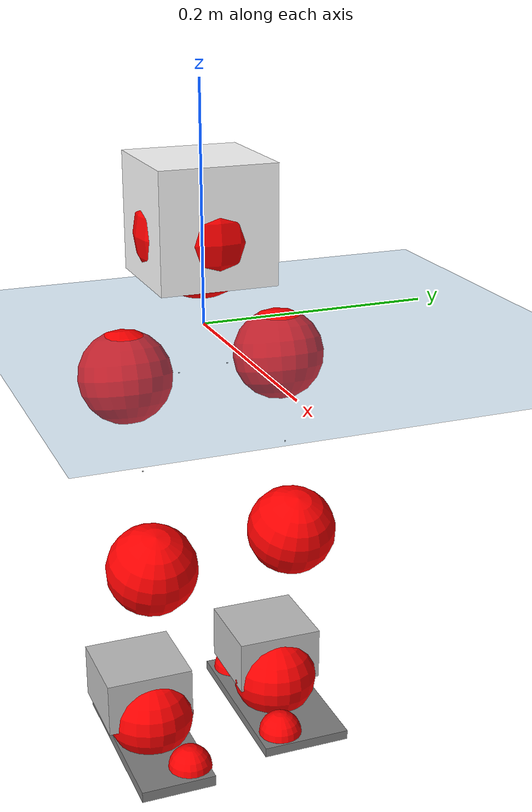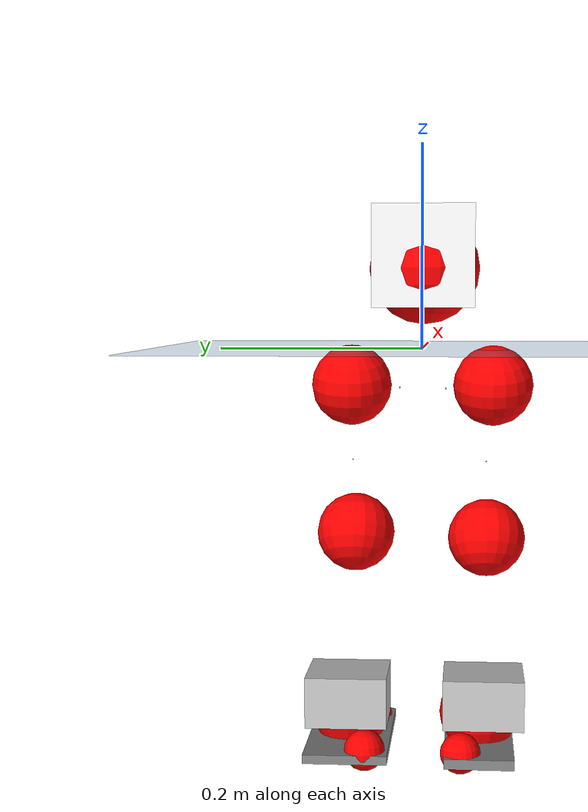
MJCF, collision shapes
<mujoco model="pi_12dof_release_v1">
  <compiler angle="radian" assetdir="assets" balanceinertia="true" inertiafromgeom="false"/>

  <option timestep="0.005" density="1.2" viscosity="2e-05"/>

  <size nkey="1"/>

  <visual>
    <quality shadowsize="8192"/>
    <map shadowclip="0.5"/>
  </visual>

  <default>
    <default class="/">
      <joint armature="0.01" damping="0.01" frictionloss="0.01"/>
      <geom contype="0" conaffinity="0" group="1" solref="-1000 -80"/>
      <site size="0.01 0.005 0.005" group="5"/>
      <general forcelimited="true" biastype="affine" gainprm="20" biasprm="0 -20 -0.5"/>
      <default class="foot">
        <geom size="0.0845 0.036 0.005" type="box" condim="6" group="4" priority="1" friction="0.9 0.2 0.2" solimp="0.015 1 0.005"/>
      </default>
      <default class="reward_collision_sphere">
        <geom group="5" rgba="1 0 0 1"/>
      </default>
    </default>
  </default>

  <asset>
    <texture type="skybox" colorspace="auto" name="//unnamed_texture_0" builtin="gradient" rgb1="0.95 0.95 0.95" rgb2="0.95 0.95 0.95" width="100" height="600"/>
    <texture type="2d" colorspace="auto" name="texplane" builtin="checker" rgb1="0.345 0.575 0.748" rgb2="0.345 0.575 0.748" markrgb="1 1 1" width="512" height="512"/>
    <material name="MatPlane" class="/" texture="texplane" texuniform="true" texrepeat="2 2" specular="0.9"/>
    <mesh name="baselink_1" class="/" file="baselink_1.STL"/>
    <mesh name="r_hip_pitch_link" class="/" file="r_hip_pitch_link.STL"/>
    <mesh name="r_hip_roll_link" class="/" file="r_hip_roll_link.STL"/>
    <mesh name="r_thigh_link" class="/" file="r_thigh_link.STL"/>
    <mesh name="r_calf_link" class="/" file="r_calf_link.STL"/>
    <mesh name="r_ankle_pitch_link" class="/" file="r_ankle_pitch_link.STL"/>
    <mesh name="r_ankle_roll_link" class="/" file="r_ankle_roll_link.STL"/>
    <mesh name="l_hip_pitch_link" class="/" file="l_hip_pitch_link.STL"/>
    <mesh name="l_hip_roll_link" class="/" file="l_hip_roll_link.STL"/>
    <mesh name="l_thigh_link" class="/" file="l_thigh_link.STL"/>
    <mesh name="l_calf_link" class="/" file="l_calf_link.STL"/>
    <mesh name="l_ankle_pitch_link" class="/" file="l_ankle_pitch_link.STL"/>
    <mesh name="l_ankle_roll_link" class="/" file="l_ankle_roll_link.STL"/>
  </asset>

  <worldbody>
    <geom name="floor" class="/" size="100 100 0.125" type="plane" group="0" material="MatPlane"/>
    <light name="toplight_shadow" class="/" pos="0 0 5" dir="0.0990148 0.0990148 -0.990148" type="directional" ambient="0.04 0.04 0.04" diffuse="0.55 0.55 0.55" specular="0.12 0.12 0.12"/>
    <light name="toplight_fill" class="/" pos="0 0 5" dir="0.0990148 0.0990148 -0.990148" type="directional" castshadow="false" ambient="0.04 0.04 0.04" diffuse="0.3 0.3 0.3" specular="0.08 0.08 0.08"/>
    <body name="trunk" pos="0.000507758 -0.00257246 -0.0020503" quat="0.999999 -0.0010556 0.000537511 0.000479183">
      <inertial pos="-0.000462934 -0.000389025 0.0490088" quat="0.702517 0.0190385 0.0116484 0.711317" mass="2.10661" diaginertia="0.00596449 0.00516649 0.00856895"/>
      <joint name="//unnamed_joint_0" type="free"/>
      <geom name="//unnamed_geom_1" class="/" type="mesh" density="0" rgba="1 1 1 1" mesh="baselink_1"/>
      <geom name="//unnamed_geom_2" class="/" size="0.0492255 0.0492255 0.0492255" pos="0 0 0.0920996" type="box" rgba="1 1 1 1"/>
      <geom name="//unnamed_geom_3" class="reward_collision_sphere" size="0.054148" pos="0 0 0.0805871"/>
      <site name="imu" class="/" pos="0.00278846 -0.00492716 -0.00492081" size="0.0098451"/>
      <camera name="track" class="/" pos="0 -1.79163 0" quat="0.707107 0.707107 0 0" mode="trackcom"/>
      <camera name="ego_camera" class="/" pos="0.0679852 0 0.207224" quat="-0.5 -0.5 0.5 0.5"/>
      <body name="r_hip_pitch_link" pos="0.0022678 -0.0211866 -0.0371671" quat="0.9922 -2.31057e-05 -0.124655 1.73469e-05">
        <inertial pos="0.00116456 -0.0517578 -0.00154472" quat="-0.0178438 0.708992 -0.0292112 0.704385" mass="0.353685" diaginertia="6.80358e-05 5.5287e-05 0.000172191"/>
        <joint name="r_hip_pitch_joint" class="/" pos="0 0 0" axis="0.000314965 -0.999999 -0.00150204" stiffness="0.00843842" range="-1.69369 1.30366" armature="0.0102604" damping="0.0132755" frictionloss="0.010149"/>
        <geom name="//unnamed_geom_4" class="/" type="mesh" density="0" rgba="0.75294 0.75294 0.75294 1" mesh="r_hip_pitch_link"/>
        <geom name="//unnamed_geom_5" class="/" size="0.000492255 0.000492255 0.000492255" type="box" rgba="0.75294 0.75294 0.75294 1"/>
        <body name="r_hip_roll_link" pos="0.00195772 -0.0466959 0.00246942" quat="1 0.000122432 5.99624e-05 -0.00010484">
          <inertial pos="-0.00083959 -0.0018953 -0.0728658" quat="0.705957 -0.0873785 -0.0726561 0.699078" mass="0.383296" diaginertia="0.000201193 0.000160483 0.000260205"/>
          <joint name="r_hip_roll_joint" class="/" pos="0 0 0" axis="-0.999906 0.0134934 -0.00222319" range="-0.112253 0.51727" armature="0.0109071" damping="0.0181303" frictionloss="0.010138"/>
          <geom name="//unnamed_geom_6" class="/" type="mesh" density="0" rgba="0.75294 0.75294 0.75294 1" mesh="r_hip_roll_link"/>
          <geom name="//unnamed_geom_7" class="/" size="0.000492255 0.000492255 0.000492255" type="box" rgba="0.75294 0.75294 0.75294 1"/>
          <geom name="//unnamed_geom_8" class="reward_collision_sphere" size="0.0393804"/>
          <body name="r_thigh_link" pos="0.000252741 0.00631153 -0.0803222" quat="1 2.02854e-05 0.000250756 -9.47009e-05">
            <inertial pos="-0.000605245 -0.00130019 -0.0566689" quat="0.740623 0.671835 0.00747296 0.00775962" mass="0.106901" diaginertia="7.39136e-05 5.32461e-05 0.000113995"/>
            <joint name="r_thigh_joint" class="/" pos="0 0 0" axis="0.000580753 -0.00518152 -0.999986" range="-0.304425 0.590061" armature="0.0107372" damping="0.00914433" frictionloss="0.00999319"/>
            <geom name="//unnamed_geom_9" class="/" type="mesh" density="0" rgba="0.75294 0.75294 0.75294 1" mesh="r_thigh_link"/>
            <geom name="//unnamed_geom_10" class="/" size="0.000492255 0.000492255 0.000492255" type="box" rgba="0.75294 0.75294 0.75294 1"/>
            <body name="r_calf_link" pos="0.000731229 -0.00102989 -0.0836731" quat="0.947726 0.000233465 0.319086 0.000453087">
              <inertial pos="-0.00124833 0.0020004 -0.0827117" quat="0.999981 -0.000572212 0.00430853 0.00430659" mass="0.746072" diaginertia="0.00207263 0.00202014 0.000360217"/>
              <joint name="r_calf_joint" class="/" pos="0 0 0" axis="1.98454e-05 -1 0.000568002" range="-1.70702 0.638612" armature="0.00974348" damping="0" frictionloss="0.010273"/>
              <geom name="//unnamed_geom_11" class="/" type="mesh" density="0" rgba="0.75294 0.75294 0.75294 1" mesh="r_calf_link"/>
              <geom name="//unnamed_geom_12" class="/" size="0.000492255 0.000492255 0.000492255" type="box" rgba="0.75294 0.75294 0.75294 1"/>
              <geom name="//unnamed_geom_13" class="reward_collision_sphere" size="0.0393804"/>
              <body name="r_ankle_pitch_link" pos="-0.00253073 0.00285966 -0.162044" quat="0.980066 -0.000113418 -0.19867 -0.000198407">
                <inertial pos="0.00692083 0.000598765 0.000411915" quat="0.00352398 0.703523 -0.0128504 0.710548" mass="0.170963" diaginertia="0.000181315 0.000127541 0.000241481"/>
                <joint name="r_ankle_pitch_joint" class="/" pos="0 0 0" axis="-0.00498973 -0.999981 0.00356398" range="-1.3484 0.487289" armature="0.0105402" damping="0.00745737" frictionloss="0.0104086"/>
                <geom name="//unnamed_geom_14" class="/" type="mesh" density="0" rgba="0.75294 0.75294 0.75294 1" mesh="r_ankle_pitch_link"/>
                <geom name="//unnamed_geom_15" class="/" size="0.0383959 0.0393804 0.0246127" type="box" rgba="0.75294 0.75294 0.75294 1"/>
                <body name="r_ankle_roll_link" pos="0.0669231 0.00411704 0.000891188" quat="1 0.000370067 -0.000157094 -8.48044e-05">
                  <inertial pos="-0.0244848 0.00282611 -0.017465" quat="0.565906 0.436427 0.433772 0.548748" mass="0.493566" diaginertia="0.000668905 0.000611321 0.00055171"/>
                  <joint name="r_ankle_roll_joint" class="/" pos="0 0 0" axis="-0.999985 -0.00445945 0.00318035" stiffness="0.00384937" range="-0.157827 0.190472" armature="0.0102581" damping="0.0211354" frictionloss="0.0108737"/>
                  <geom name="//unnamed_geom_16" class="/" type="mesh" density="0" rgba="0.75294 0.75294 0.75294 1" mesh="r_ankle_roll_link"/>
                  <geom name="//unnamed_geom_17" class="/" type="mesh" rgba="0.75294 0.75294 0.75294 1" mesh="r_ankle_roll_link"/>
                  <geom name="right_foot" class="foot" size="0.082925 0.0337501 0.00493925" pos="-0.0462299 0 -0.0506548"/>
                  <geom name="//unnamed_geom_19" class="reward_collision_sphere" size="0.0393804" pos="-0.0453234 0 -0.0230249"/>
                  <geom name="//unnamed_geom_20" class="reward_collision_sphere" size="0.0196902" pos="0.013597 0.0179163 -0.0460498"/>
                  <geom name="//unnamed_geom_21" class="reward_collision_sphere" size="0.0196902" pos="-0.108776 0.0179163 -0.0460498"/>
                  <site name="right_foot" class="foot" pos="-0.0462299 0 -0.0506548" size="0.0098451"/>
                </body>
              </body>
            </body>
          </body>
        </body>
      </body>
      <body name="l_hip_pitch_link" pos="-0.00333312 0.0239863 -0.0358205" quat="0.992219 -0.000549686 -0.124501 0.000407076">
        <inertial pos="0.00170325 0.0467112 0.00272918" quat="-0.0390635 0.710123 0.0291534 0.702389" mass="0.362111" diaginertia="7.52824e-05 5.66564e-05 0.000204116"/>
        <joint name="l_hip_pitch_joint" class="/" pos="0 0 0" axis="-0.004521 0.999969 -0.00644473" stiffness="0.00226561" range="-1.25502 1.78141" armature="0.0103178" damping="0.00626128" frictionloss="0.00988936"/>
        <geom name="//unnamed_geom_22" class="/" type="mesh" density="0" rgba="0.75294 0.75294 0.75294 1" mesh="l_hip_pitch_link"/>
        <geom name="//unnamed_geom_23" class="/" size="0.000492255 0.000492255 0.000492255" type="box" rgba="0.75294 0.75294 0.75294 1"/>
        <body name="l_hip_roll_link" pos="-0.000640212 0.0474526 0.0029611" quat="1 0.00010356 -2.29352e-05 0.000240883">
          <inertial pos="-0.000368684 -0.00064467 -0.0684768" quat="0.705291 -0.0697962 -0.0731894 0.701667" mass="0.370917" diaginertia="0.000197063 0.000165983 0.00026411"/>
          <joint name="l_hip_roll_joint" class="/" pos="0 0 0" axis="-0.999943 -0.00432469 -0.00972762" stiffness="0.0095734" range="-0.486393 0.153519" armature="0.00977483" damping="0.00194764" frictionloss="0.00846468"/>
          <geom name="//unnamed_geom_24" class="/" type="mesh" density="0" rgba="0.75294 0.75294 0.75294 1" mesh="l_hip_roll_link"/>
          <geom name="//unnamed_geom_25" class="/" size="0.000492255 0.000492255 0.000492255" type="box" rgba="0.75294 0.75294 0.75294 1"/>
          <geom name="//unnamed_geom_26" class="reward_collision_sphere" size="0.0393804"/>
          <body name="l_thigh_link" pos="-0.00322189 0.000177947 -0.0773556" quat="0.999999 -0.000439465 0.000984506 -0.000909401">
            <inertial pos="-0.00066143 0.0005365 -0.0547848" quat="0.674537 0.738227 0.00439835 0.00108966" mass="0.105332" diaginertia="7.45523e-05 5.32907e-05 0.000114661"/>
            <joint name="l_thigh_joint" class="/" pos="0 0 0" axis="0.00144 -0.00146765 -0.999998" stiffness="0.00967208" range="-0.561325 0.32334" armature="0.0083203" damping="0" frictionloss="0.0109198"/>
            <geom name="//unnamed_geom_27" class="/" type="mesh" density="0" rgba="0.75294 0.75294 0.75294 1" mesh="l_thigh_link"/>
            <geom name="//unnamed_geom_28" class="/" size="0.000492255 0.000492255 0.000492255" type="box" rgba="0.75294 0.75294 0.75294 1"/>
            <body name="l_calf_link" pos="-0.000675498 -0.00100106 -0.0790699" quat="0.94772 5.04739e-05 0.319104 0.000264936">
              <inertial pos="-0.000420943 0.00024173 -0.0829057" quat="0.999987 0.00213244 0.000243092 0.00465224" mass="0.748769" diaginertia="0.00207333 0.00199742 0.000337128"/>
              <joint name="l_calf_joint" class="/" pos="0 0 0" axis="-0.00918751 0.999922 -0.0084661" stiffness="0.00226415" range="-0.619941 1.61029" armature="0.0085343" damping="0.00707709" frictionloss="0.0107413"/>
              <geom name="//unnamed_geom_29" class="/" type="mesh" density="0" rgba="0.75294 0.75294 0.75294 1" mesh="l_calf_link"/>
              <geom name="//unnamed_geom_30" class="/" size="0.000492255 0.000492255 0.000492255" type="box" rgba="0.75294 0.75294 0.75294 1"/>
              <geom name="//unnamed_geom_31" class="reward_collision_sphere" size="0.0393804"/>
              <body name="l_ankle_pitch_link" pos="-0.00239939 0.0026109 -0.16471" quat="0.980074 0.000164942 -0.198631 -0.00117692">
                <inertial pos="0.00495028 -0.00311391 -0.000147425" quat="-0.00269872 0.707354 0.00147661 0.706853" mass="0.174709" diaginertia="0.000192288 0.000126874 0.000238031"/>
                <joint name="l_ankle_pitch_joint" class="/" pos="0 0 0" axis="-0.00316716 0.999995 -0.000553556" range="-0.511893 1.31528" armature="0.00935574" damping="0.0152662" frictionloss="0.00851087"/>
                <geom name="//unnamed_geom_32" class="/" type="mesh" density="0" rgba="0.75294 0.75294 0.75294 1" mesh="l_ankle_pitch_link"/>
                <geom name="//unnamed_geom_33" class="/" size="0.0383959 0.0393804 0.0246127" type="box" rgba="0.75294 0.75294 0.75294 1"/>
                <body name="l_ankle_roll_link" pos="0.069994 -0.000445312 0.00156398" quat="1 0.000159805 -8.06772e-05 7.32937e-06">
                  <inertial pos="-0.0253664 -0.000794838 -0.0150826" quat="0.559986 0.430775 0.434788 0.558398" mass="0.512733" diaginertia="0.000711212 0.000617975 0.000579353"/>
                  <joint name="l_ankle_roll_joint" class="/" pos="0 0 0" axis="-0.999992 -0.00348165 0.00200207" range="-0.153117 0.148208" armature="0.00976326" damping="0.00167176" frictionloss="0.00865237"/>
                  <geom name="//unnamed_geom_34" class="/" type="mesh" density="0" rgba="0.75294 0.75294 0.75294 1" mesh="l_ankle_roll_link"/>
                  <geom name="//unnamed_geom_35" class="/" type="mesh" rgba="0.75294 0.75294 0.75294 1" mesh="l_ankle_roll_link"/>
                  <geom name="left_foot" class="foot" size="0.0809627 0.040321 0.00437898" pos="-0.0462299 0 -0.0506548"/>
                  <geom name="//unnamed_geom_37" class="reward_collision_sphere" size="0.0393804" pos="-0.0453234 0 -0.0230249"/>
                  <geom name="//unnamed_geom_38" class="reward_collision_sphere" size="0.0196902" pos="0.013597 -0.0179163 -0.0460498"/>
                  <geom name="//unnamed_geom_39" class="reward_collision_sphere" size="0.0196902" pos="-0.108776 -0.0179163 -0.0460498"/>
                  <site name="left_foot" class="foot" pos="-0.0462299 0 -0.0506548" size="0.0098451"/>
                </body>
              </body>
            </body>
          </body>
        </body>
      </body>
    </body>
  </worldbody>

  <contact>
    <pair class="/" geom1="floor" geom2="right_foot" name="//unnamed_contact_1"/>
    <pair class="/" geom1="floor" geom2="left_foot" name="//unnamed_contact_0"/>
  </contact>

  <actuator>
    <general name="r_hip_pitch_joint" class="/" joint="r_hip_pitch_joint" forcerange="-18.7279 18.7279" gainprm="18.4071" biasprm="0 -18.4071 -0.544232"/>
    <general name="r_hip_roll_joint" class="/" joint="r_hip_roll_joint" forcerange="-20.4999 20.4999" gainprm="18.4071" biasprm="0 -18.4071 -0.544232"/>
    <general name="r_thigh_joint" class="/" joint="r_thigh_joint" forcerange="-21.0135 21.0135" gainprm="18.4071" biasprm="0 -18.4071 -0.544232"/>
    <general name="r_calf_joint" class="/" joint="r_calf_joint" forcerange="-19.9864 19.9864" gainprm="18.4071" biasprm="0 -18.4071 -0.544232"/>
    <general name="r_ankle_pitch_joint" class="/" joint="r_ankle_pitch_joint" forcerange="-20.6527 20.6527" gainprm="18.4071" biasprm="0 -18.4071 -0.544232"/>
    <general name="r_ankle_roll_joint" class="/" joint="r_ankle_roll_joint" forcerange="-22.2785 22.2785" gainprm="18.4071" biasprm="0 -18.4071 -0.544232"/>
    <general name="l_hip_pitch_joint" class="/" joint="l_hip_pitch_joint" forcerange="-22.9335 22.9335" gainprm="18.4071" biasprm="0 -18.4071 -0.544232"/>
    <general name="l_hip_roll_joint" class="/" joint="l_hip_roll_joint" forcerange="-20.3795 20.3795" gainprm="18.4071" biasprm="0 -18.4071 -0.544232"/>
    <general name="l_thigh_joint" class="/" joint="l_thigh_joint" forcerange="-19.9264 19.9264" gainprm="18.4071" biasprm="0 -18.4071 -0.544232"/>
    <general name="l_calf_joint" class="/" joint="l_calf_joint" forcerange="-18.4999 18.4999" gainprm="18.4071" biasprm="0 -18.4071 -0.544232"/>
    <general name="l_ankle_pitch_joint" class="/" joint="l_ankle_pitch_joint" forcerange="-21.4352 21.4352" gainprm="18.4071" biasprm="0 -18.4071 -0.544232"/>
    <general name="l_ankle_roll_joint" class="/" joint="l_ankle_roll_joint" forcerange="-18.8603 18.8603" gainprm="18.4071" biasprm="0 -18.4071 -0.544232"/>
  </actuator>

  <sensor>
    <gyro site="imu" name="imu_angular_velocity"/>
    <velocimeter site="imu" name="imu_linear_velocity"/>
    <framelinvel objtype="site" objname="left_foot" name="left_foot_global_linear_velocity"/>
    <framelinvel objtype="site" objname="right_foot" name="right_foot_global_linear_velocity"/>
  </sensor>

  <keyframe>
    <key name="home" qpos="0 0 0.291 1 0 0 0 0.4 0 0 -0.8 0.4 0 -0.4 0 0 0.8 -0.4 0"/>
  </keyframe>
</mujoco>
